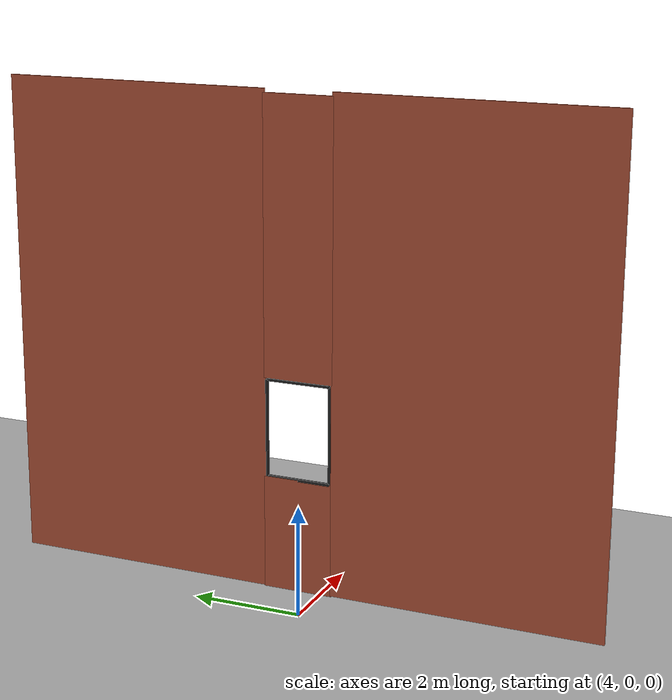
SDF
<sdf version='1.6'>
  <world name='default'>
    <light name='sun' type='directional'>
      <cast_shadows>1</cast_shadows>
      <pose frame=''>0 0 10 0 -0 0</pose>
      <diffuse>0.8 0.8 0.8 1</diffuse>
      <specular>0.2 0.2 0.2 1</specular>
      <attenuation>
        <range>1000</range>
        <constant>0.9</constant>
        <linear>0.01</linear>
        <quadratic>0.001</quadratic>
      </attenuation>
      <direction>-0.5 0.1 -0.9</direction>
    </light>
    <model name='ground_plane'>
      <static>1</static>
      <link name='link'>
        <collision name='collision'>
          <geometry>
            <plane>
              <normal>0 0 1</normal>
              <size>100 100</size>
            </plane>
          </geometry>
          <surface>
            <friction>
              <ode>
                <mu>100</mu>
                <mu2>50</mu2>
              </ode>
              <torsional>
                <ode/>
              </torsional>
            </friction>
            <contact>
              <ode/>
            </contact>
            <bounce/>
          </surface>
          <max_contacts>10</max_contacts>
        </collision>
        <visual name='visual'>
          <cast_shadows>0</cast_shadows>
          <geometry>
            <plane>
              <normal>0 0 1</normal>
              <size>100 100</size>
            </plane>
          </geometry>
          <material>
            <script>
              <uri>file://media/materials/scripts/gazebo.material</uri>
              <name>Gazebo/Grey</name>
            </script>
          </material>
        </visual>
        <self_collide>0</self_collide>
        <kinematic>0</kinematic>
      </link>
    </model>
    <gravity>0 0 -9.8</gravity>
    <magnetic_field>6e-06 2.3e-05 -4.2e-05</magnetic_field>
    <atmosphere type='adiabatic'/>
    <physics name='default_physics' default='0' type='ode'>
      <max_step_size>0.004</max_step_size>
      <real_time_factor>1</real_time_factor>
      <real_time_update_rate>250</real_time_update_rate>
    </physics>
    <scene>
      <ambient>0.4 0.4 0.4 1</ambient>
      <background>0.7 0.7 0.7 1</background>
      <shadows>1</shadows>
    </scene>
    <spherical_coordinates>
      <surface_model>EARTH_WGS84</surface_model>
      <latitude_deg>0</latitude_deg>
      <longitude_deg>0</longitude_deg>
      <elevation>0</elevation>
      <heading_deg>0</heading_deg>
    </spherical_coordinates>

    <model name="left">
      <static>true</static>
      <link name='box'>
        <pose>5 -0.15 3.0 0 0 0</pose>
        <collision name='collision'>
          <geometry>
            <box>
              <size>0.05 0.05 1.8</size>
            </box>
          </geometry>
        </collision>
        <visual name='visual'>
          <geometry>
            <box>
              <size>0.05 0.05 1.8</size>
            </box>
          </geometry>
          <material>
            <script>
              <uri>file://media/materials/scripts/gazebo.material</uri>
              <name>Gazebo/Black</name>
            </script>
          </material>
        </visual>
      </link>
    </model>

    <model name="bottom">
     <static>true</static>
     <link name='box'>
       <pose>5 0.45 2.1 0 0 1.57</pose>
       <collision name='collision'>
         <geometry>
           <box>
             <size>1.2 0.05 0.05</size>
           </box>
         </geometry>
       </collision>
       <visual name='visual'>
         <geometry>
           <box>
             <size>1.2 0.05 0.05</size>
           </box>
         </geometry>
         <material>
           <script>
             <uri>file://media/materials/scripts/gazebo.material</uri>
             <name>Gazebo/Black</name>
           </script>
         </material>
       </visual>
     </link>
   </model>

   <model name="right">
    <static>true</static>
    <link name='box'>
      <pose>5 1.05 3.0 0 0 0</pose>
      <collision name='collision'>
        <geometry>
          <box>
            <size>0.05 0.05 1.8</size>
          </box>
        </geometry>
      </collision>
      <visual name='visual'>
        <geometry>
          <box>
            <size>0.05 0.05 1.8</size>
          </box>
        </geometry>
        <material>
          <script>
            <uri>file://media/materials/scripts/gazebo.material</uri>
            <name>Gazebo/Black</name>
          </script>
        </material>
      </visual>
    </link>
  </model>

  <model name="top">
   <static>true</static>
   <link name='box'>
     <pose>5 0.45 3.9 0 0 1.57</pose>
     <collision name='collision'>
       <geometry>
         <box>
           <size>1.2 0.05 0.05</size>
         </box>
       </geometry>
     </collision>
     <visual name='visual'>
       <geometry>
         <box>
           <size>1.2 0.05 0.05</size>
         </box>
       </geometry>
       <material>
         <script>
           <uri>file://media/materials/scripts/gazebo.material</uri>
           <name>Gazebo/Black</name>
         </script>
       </material>
     </visual>
   </link>
 </model>

 <model name="wall_right">
  <static>true</static>
  <link name='box'>
    <pose>5 -2.68 4.5 0 0 0</pose>
    <collision name='collision'>
      <geometry>
        <box>
          <size>0.05 5 9</size>
        </box>
      </geometry>
    </collision>
    <visual name='visual'>
      <geometry>
        <box>
          <size>0.05 5 9</size>
        </box>
      </geometry>
      <material>
        <script>
          <uri>file://media/materials/scripts/gazebo.material</uri>
          <name>Gazebo/Bricks</name>
        </script>
      </material>
    </visual>
  </link>
</model>

<model name="wall_left">
 <static>true</static>
 <link name='box'>
   <pose>5 3.57 4.5 0 0 0</pose>
   <collision name='collision'>
     <geometry>
       <box>
         <size>0.05 5 9</size>
       </box>
     </geometry>
   </collision>
   <visual name='visual'>
     <geometry>
       <box>
         <size>0.05 5 9</size>
       </box>
     </geometry>
     <material>
       <script>
         <uri>file://media/materials/scripts/gazebo.material</uri>
         <name>Gazebo/Bricks</name>
       </script>
     </material>
   </visual>
 </link>
</model>

<model name="wall_top">
 <static>true</static>
 <link name='box'>
   <pose>5 0.45 6.43 0 0 0</pose>
   <collision name='collision'>
     <geometry>
       <box>
         <size>0.05 1.3 5</size>
       </box>
     </geometry>
   </collision>
   <visual name='visual'>
     <geometry>
       <box>
         <size>0.05 1.3 5</size>
       </box>
     </geometry>
     <material>
       <script>
         <uri>file://media/materials/scripts/gazebo.material</uri>
         <name>Gazebo/Bricks</name>
       </script>
     </material>
   </visual>
 </link>
</model>

<model name="wall_bottom">
 <static>true</static>
 <link name='box'>
   <pose>5 0.45 1 0 0 0</pose>
   <collision name='collision'>
     <geometry>
       <box>
         <size>0.05 1.3 2.2</size>
       </box>
     </geometry>
   </collision>
   <visual name='visual'>
     <geometry>
       <box>
         <size>0.05 1.3 2.2</size>
       </box>
     </geometry>
     <material>
       <script>
         <uri>file://media/materials/scripts/gazebo.material</uri>
         <name>Gazebo/Bricks</name>
       </script>
     </material>
   </visual>
 </link>
</model>
  </world>
</sdf>
